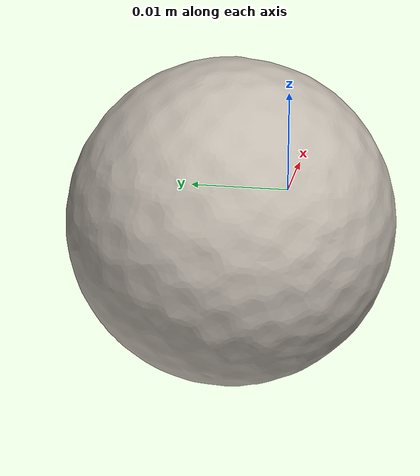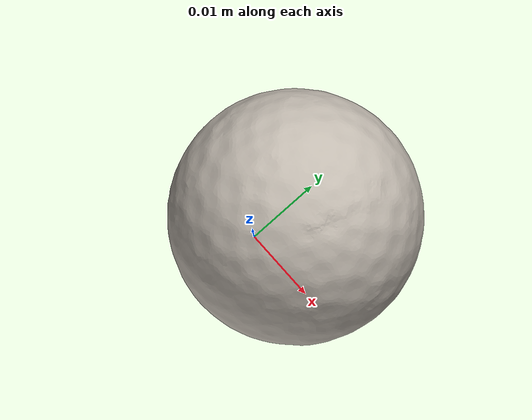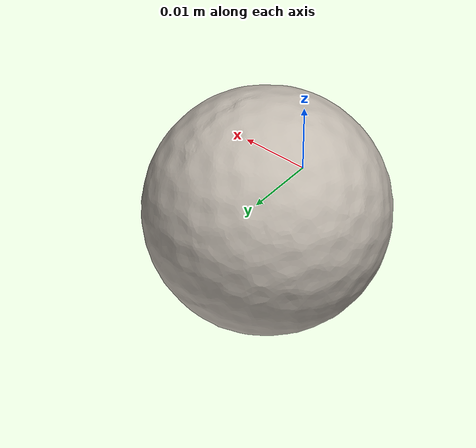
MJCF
<mujoco model="bread">
  <asset>
    <mesh file="nontextured.stl" name="obj_mesh" scale="0.8 0.8 0.8"/>
    <texture file="../../../../../textures/bread.png" type="2d" name="tex-bread" />
    <material name="bread" reflectance="0.7" texrepeat="15 15" texture="tex-bread" texuniform="true"/>
  </asset>
  <worldbody>
    <body>
      <body name="collision">
        <geom pos="0.0065395 0.0304375 -0.0209435" mesh="obj_mesh" type="mesh" solimp="0.998 0.998 0.001" solref="0.001 1" density="50" friction="0.95 0.3 0.1"  material="bread" group="1" condim="4"/>
      </body>
      <body name="visual">
        <geom pos="0.0065395 0.0304375 -0.0209435" mesh="obj_mesh" type="mesh" material="bread"  conaffinity="0" contype="0"  group="0" mass="0.0001"/>
        <geom pos="0.0065395 0.0304375 -0.0209435" mesh="obj_mesh" type="mesh" material="bread"  conaffinity="0" contype="0"  group="1" mass="0.0001"/>
      </body>
      <site rgba="0 0 0 0" size="0.005" pos="0 0 -0.0211875" name="bottom_site"/>
      <site rgba="0 0 0 0" size="0.005" pos="0 0 0.0211875" name="top_site"/>
      <site rgba="0 0 0 0" size="0.005" pos="0.0213395 0.021360499999999998 0.0211875" name="horizontal_radius_site"/>
    </body>
  </worldbody>
</mujoco>
